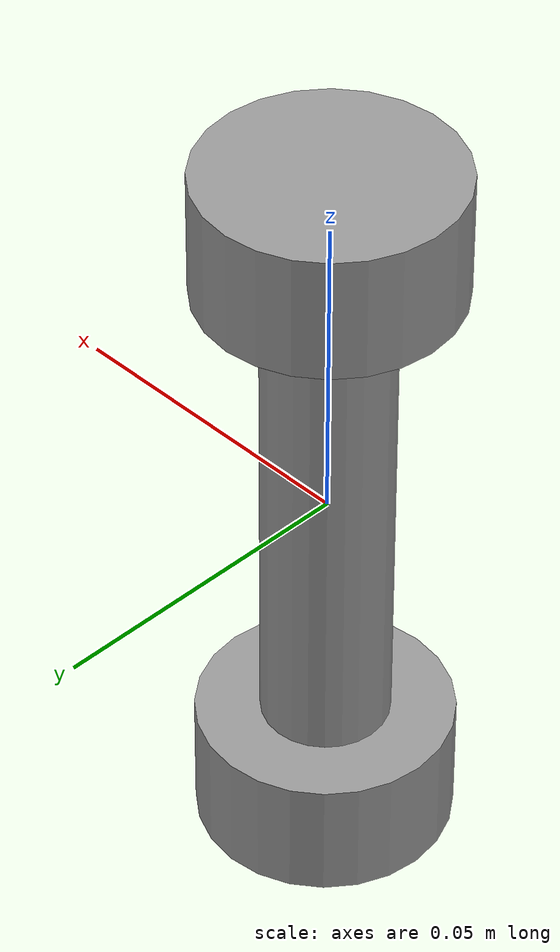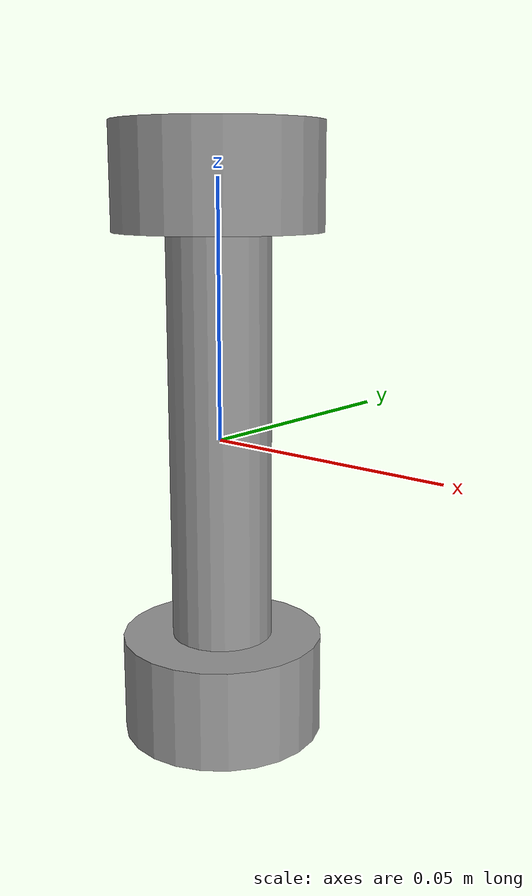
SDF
<?xml version='1.0'?>
<sdf version='1.7'>
  <model name='godbomb'>
    <link name='link_0'>
      <inertial>
        <mass>0.5</mass>
        <inertia>
          <ixx>0.00042917</ixx>
          <ixy>0</ixy>
          <ixz>0</ixz>
          <iyy>0.00042917</iyy>
          <iyz>0</iyz>
          <izz>2.5e-05</izz>
        </inertia>
        <pose>0 0 0 0 -0 0</pose>
      </inertial>
      <pose>0 0 0 0 -0 0</pose>
      <gravity>1</gravity>
      <self_collide>0</self_collide>
      <kinematic>0</kinematic>
      <enable_wind>0</enable_wind>
      <visual name='ModelPreview_2::link_0::visual_2'>
        <pose>0 0 -0.05 0 -0 0</pose>
        <geometry>
          <cylinder>
            <radius>0.02</radius>
            <length>0.02</length>
          </cylinder>
        </geometry>
        <material>
          <lighting>1</lighting>
          <script>
            <uri>file://media/materials/scripts/gazebo.material</uri>
            <name>Gazebo/Grey</name>
          </script>
          <shader type='pixel'>
            <normal_map>__default__</normal_map>
          </shader>
          <ambient>0.3 0.3 0.3 1</ambient>
          <diffuse>0.7 0.7 0.7 1</diffuse>
          <specular>0.01 0.01 0.01 1</specular>
          <emissive>0 0 0 1</emissive>
        </material>
        <transparency>0</transparency>
        <cast_shadows>1</cast_shadows>
      </visual>
      <visual name='visual'>
        <pose>0 0 0 0 -0 0</pose>
        <geometry>
          <cylinder>
            <radius>0.01</radius>
            <length>0.08</length>
          </cylinder>
        </geometry>
        <material>
          <lighting>1</lighting>
          <script>
            <uri>file://media/materials/scripts/gazebo.material</uri>
            <name>Gazebo/Grey</name>
          </script>
          <shader type='pixel'>
            <normal_map>__default__</normal_map>
          </shader>
          <ambient>0.3 0.3 0.3 1</ambient>
          <diffuse>0.7 0.7 0.7 1</diffuse>
          <specular>0.01 0.01 0.01 1</specular>
          <emissive>0 0 0 1</emissive>
        </material>
        <transparency>0</transparency>
        <cast_shadows>1</cast_shadows>
      </visual>
      <visual name='ModelPreview_0::link_0::visual_1'>
        <pose>0 0 0.05 0 -0 0</pose>
        <geometry>
          <cylinder>
            <radius>0.02</radius>
            <length>0.02</length>
          </cylinder>
        </geometry>
        <material>
          <lighting>1</lighting>
          <script>
            <uri>file://media/materials/scripts/gazebo.material</uri>
            <name>Gazebo/Grey</name>
          </script>
          <shader type='pixel'>
            <normal_map>__default__</normal_map>
          </shader>
          <ambient>0.3 0.3 0.3 1</ambient>
          <diffuse>0.7 0.7 0.7 1</diffuse>
          <specular>0.01 0.01 0.01 1</specular>
          <emissive>0 0 0 1</emissive>
        </material>
        <transparency>0</transparency>
        <cast_shadows>1</cast_shadows>
      </visual>
      <collision name='collision_2'>
        <laser_retro>0</laser_retro>
        <max_contacts>10</max_contacts>
        <pose>0 0 -0.05 0 -0 0</pose>
        <geometry>
          <cylinder>
            <radius>0.02</radius>
            <length>0.02</length>
          </cylinder>
        </geometry>
        <surface>
          <friction>
            <ode>
              <mu>1</mu>
              <mu2>1</mu2>
              <fdir1>0 0 0</fdir1>
              <slip1>0</slip1>
              <slip2>0</slip2>
            </ode>
            <torsional>
              <coefficient>1</coefficient>
              <patch_radius>0</patch_radius>
              <surface_radius>0</surface_radius>
              <use_patch_radius>1</use_patch_radius>
              <ode>
                <slip>0</slip>
              </ode>
            </torsional>
          </friction>
          <bounce>
            <restitution_coefficient>0</restitution_coefficient>
            <threshold>1e+06</threshold>
          </bounce>
          <contact>
            <collide_without_contact>0</collide_without_contact>
            <collide_without_contact_bitmask>1</collide_without_contact_bitmask>
            <collide_bitmask>1</collide_bitmask>
            <ode>
              <soft_cfm>0</soft_cfm>
              <soft_erp>0.2</soft_erp>
              <kp>1e+13</kp>
              <kd>1</kd>
              <max_vel>0.01</max_vel>
              <min_depth>0</min_depth>
            </ode>
            <bullet>
              <split_impulse>1</split_impulse>
              <split_impulse_penetration_threshold>-0.01</split_impulse_penetration_threshold>
              <soft_cfm>0</soft_cfm>
              <soft_erp>0.2</soft_erp>
              <kp>1e+13</kp>
              <kd>1</kd>
            </bullet>
          </contact>
        </surface>
      </collision>
      <collision name='collision'>
        <laser_retro>0</laser_retro>
        <max_contacts>10</max_contacts>
        <pose>0 0 0 0 -0 0</pose>
        <geometry>
          <cylinder>
            <radius>0.01</radius>
            <length>0.08</length>
          </cylinder>
        </geometry>
        <surface>
          <friction>
            <ode>
              <mu>1</mu>
              <mu2>1</mu2>
              <fdir1>0 0 0</fdir1>
              <slip1>0</slip1>
              <slip2>0</slip2>
            </ode>
            <torsional>
              <coefficient>1</coefficient>
              <patch_radius>0</patch_radius>
              <surface_radius>0</surface_radius>
              <use_patch_radius>1</use_patch_radius>
              <ode>
                <slip>0</slip>
              </ode>
            </torsional>
          </friction>
          <bounce>
            <restitution_coefficient>0</restitution_coefficient>
            <threshold>1e+06</threshold>
          </bounce>
          <contact>
            <collide_without_contact>0</collide_without_contact>
            <collide_without_contact_bitmask>1</collide_without_contact_bitmask>
            <collide_bitmask>1</collide_bitmask>
            <ode>
              <soft_cfm>0</soft_cfm>
              <soft_erp>0.2</soft_erp>
              <kp>1e+13</kp>
              <kd>1</kd>
              <max_vel>0.01</max_vel>
              <min_depth>0</min_depth>
            </ode>
            <bullet>
              <split_impulse>1</split_impulse>
              <split_impulse_penetration_threshold>-0.01</split_impulse_penetration_threshold>
              <soft_cfm>0</soft_cfm>
              <soft_erp>0.2</soft_erp>
              <kp>1e+13</kp>
              <kd>1</kd>
            </bullet>
          </contact>
        </surface>
      </collision>
      <collision name='collision_1'>
        <laser_retro>0</laser_retro>
        <max_contacts>10</max_contacts>
        <pose>0 0 0.05 0 -0 0</pose>
        <geometry>
          <cylinder>
            <radius>0.02</radius>
            <length>0.02</length>
          </cylinder>
        </geometry>
        <surface>
          <friction>
            <ode>
              <mu>1</mu>
              <mu2>1</mu2>
              <fdir1>0 0 0</fdir1>
              <slip1>0</slip1>
              <slip2>0</slip2>
            </ode>
            <torsional>
              <coefficient>1</coefficient>
              <patch_radius>0</patch_radius>
              <surface_radius>0</surface_radius>
              <use_patch_radius>1</use_patch_radius>
              <ode>
                <slip>0</slip>
              </ode>
            </torsional>
          </friction>
          <bounce>
            <restitution_coefficient>0</restitution_coefficient>
            <threshold>1e+06</threshold>
          </bounce>
          <contact>
            <collide_without_contact>0</collide_without_contact>
            <collide_without_contact_bitmask>1</collide_without_contact_bitmask>
            <collide_bitmask>1</collide_bitmask>
            <ode>
              <soft_cfm>0</soft_cfm>
              <soft_erp>0.2</soft_erp>
              <kp>1e+13</kp>
              <kd>1</kd>
              <max_vel>0.01</max_vel>
              <min_depth>0</min_depth>
            </ode>
            <bullet>
              <split_impulse>1</split_impulse>
              <split_impulse_penetration_threshold>-0.01</split_impulse_penetration_threshold>
              <soft_cfm>0</soft_cfm>
              <soft_erp>0.2</soft_erp>
              <kp>1e+13</kp>
              <kd>1</kd>
            </bullet>
          </contact>
        </surface>
      </collision>
    </link>
    <static>0</static>
    <allow_auto_disable>1</allow_auto_disable>
  </model>
</sdf>
